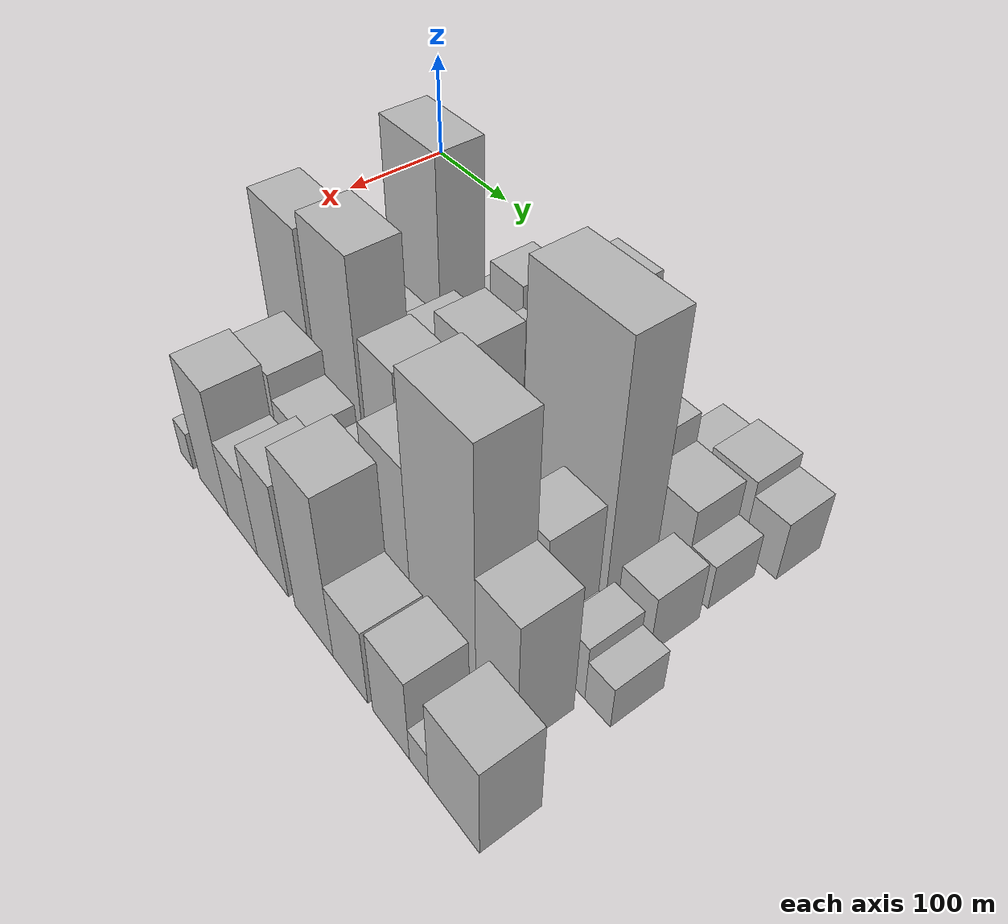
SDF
<sdf version="1.6">
 <world name="default">
  <model name="building_33">
   <static>1</static>
   <pose>100.0000 210.1511 0 0.000000 0.000000 0.000000</pose>
   <link name="link">
    <pose>0 0 7.50 0 0 0</pose>
    <collision name="collision"><geometry><box><size>40.0000 7.4541 15.0000</size></box></geometry></collision>
    <visual name="visual">
     <cast_shadows>0</cast_shadows>
     <geometry><box><size>40.0000 7.4541 15.0000</size></box></geometry>
     <material>
      <script>
       <uri>model://HANNAS_wall/materials/scripts</uri>
       <uri>model://HANNAS_wall/materials/textures</uri>
       <name>vrc/HANNAS_wall</name>
      </script>
     </material>
    </visual>
   </link>
  </model>
  <model name="building_34">
   <static>1</static>
   <pose>100.0000 224.5080 0 0.000000 0.000000 0.000000</pose>
   <link name="link">
    <pose>0 0 18.00 0 0 0</pose>
    <collision name="collision"><geometry><box><size>40.0000 21.2596 36.0000</size></box></geometry></collision>
    <visual name="visual">
     <cast_shadows>0</cast_shadows>
     <geometry><box><size>40.0000 21.2596 36.0000</size></box></geometry>
     <material>
      <script>
       <uri>model://HANNAS_wall/materials/scripts</uri>
       <uri>model://HANNAS_wall/materials/textures</uri>
       <name>vrc/HANNAS_wall</name>
      </script>
     </material>
    </visual>
   </link>
  </model>
  <model name="building_35">
   <static>1</static>
   <pose>100.0000 254.3415 0 0.000000 0.000000 0.000000</pose>
   <link name="link">
    <pose>0 0 34.50 0 0 0</pose>
    <collision name="collision"><geometry><box><size>40.0000 38.4075 69.0000</size></box></geometry></collision>
    <visual name="visual">
     <cast_shadows>0</cast_shadows>
     <geometry><box><size>40.0000 38.4075 69.0000</size></box></geometry>
     <material>
      <script>
       <uri>model://HANNAS_wall/materials/scripts</uri>
       <uri>model://HANNAS_wall/materials/textures</uri>
       <name>vrc/HANNAS_wall</name>
      </script>
     </material>
    </visual>
   </link>
  </model>
  <model name="building_36">
   <static>1</static>
   <pose>100.0000 281.0811 0 0.000000 0.000000 0.000000</pose>
   <link name="link">
    <pose>0 0 10.50 0 0 0</pose>
    <collision name="collision"><geometry><box><size>40.0000 9.0717 21.0000</size></box></geometry></collision>
    <visual name="visual">
     <cast_shadows>0</cast_shadows>
     <geometry><box><size>40.0000 9.0717 21.0000</size></box></geometry>
     <material>
      <script>
       <uri>model://HANNAS_wall/materials/scripts</uri>
       <uri>model://HANNAS_wall/materials/textures</uri>
       <name>vrc/HANNAS_wall</name>
      </script>
     </material>
    </visual>
   </link>
  </model>
  <model name="building_37">
   <static>1</static>
   <pose>100.0000 301.2184 0 0.000000 0.000000 0.000000</pose>
   <link name="link">
    <pose>0 0 27.00 0 0 0</pose>
    <collision name="collision"><geometry><box><size>40.0000 31.2029 54.0000</size></box></geometry></collision>
    <visual name="visual">
     <cast_shadows>0</cast_shadows>
     <geometry><box><size>40.0000 31.2029 54.0000</size></box></geometry>
     <material>
      <script>
       <uri>model://HANNAS_wall/materials/scripts</uri>
       <uri>model://HANNAS_wall/materials/textures</uri>
       <name>vrc/HANNAS_wall</name>
      </script>
     </material>
    </visual>
   </link>
  </model>
  <model name="building_38">
   <static>1</static>
   <pose>100.0000 344.7618 0 0.000000 0.000000 0.000000</pose>
   <link name="link">
    <pose>0 0 61.50 0 0 0</pose>
    <collision name="collision"><geometry><box><size>40.0000 43.8839 123.0000</size></box></geometry></collision>
    <visual name="visual">
     <cast_shadows>0</cast_shadows>
     <geometry><box><size>40.0000 43.8839 123.0000</size></box></geometry>
     <material>
      <script>
       <uri>model://HANNAS_wall/materials/scripts</uri>
       <uri>model://HANNAS_wall/materials/textures</uri>
       <name>vrc/HANNAS_wall</name>
      </script>
     </material>
    </visual>
   </link>
  </model>
  <model name="building_39">
   <static>1</static>
   <pose>100.0000 377.5432 0 0.000000 0.000000 0.000000</pose>
   <link name="link">
    <pose>0 0 19.50 0 0 0</pose>
    <collision name="collision"><geometry><box><size>40.0000 21.6790 39.0000</size></box></geometry></collision>
    <visual name="visual">
     <cast_shadows>0</cast_shadows>
     <geometry><box><size>40.0000 21.6790 39.0000</size></box></geometry>
     <material>
      <script>
       <uri>model://HANNAS_wall/materials/scripts</uri>
       <uri>model://HANNAS_wall/materials/textures</uri>
       <name>vrc/HANNAS_wall</name>
      </script>
     </material>
    </visual>
   </link>
  </model>
  <model name="building_40">
   <static>1</static>
   <pose>100.0000 398.1407 0 0.000000 0.000000 0.000000</pose>
   <link name="link">
    <pose>0 0 16.50 0 0 0</pose>
    <collision name="collision"><geometry><box><size>40.0000 19.5160 33.0000</size></box></geometry></collision>
    <visual name="visual">
     <cast_shadows>0</cast_shadows>
     <geometry><box><size>40.0000 19.5160 33.0000</size></box></geometry>
     <material>
      <script>
       <uri>model://HANNAS_wall/materials/scripts</uri>
       <uri>model://HANNAS_wall/materials/textures</uri>
       <name>vrc/HANNAS_wall</name>
      </script>
     </material>
    </visual>
   </link>
  </model>
  <model name="building_41">
   <static>1</static>
   <pose>100.0000 411.3787 0 0.000000 0.000000 0.000000</pose>
   <link name="link">
    <pose>0 0 7.50 0 0 0</pose>
    <collision name="collision"><geometry><box><size>40.0000 6.9599 15.0000</size></box></geometry></collision>
    <visual name="visual">
     <cast_shadows>0</cast_shadows>
     <geometry><box><size>40.0000 6.9599 15.0000</size></box></geometry>
     <material>
      <script>
       <uri>model://HANNAS_wall/materials/scripts</uri>
       <uri>model://HANNAS_wall/materials/textures</uri>
       <name>vrc/HANNAS_wall</name>
      </script>
     </material>
    </visual>
   </link>
  </model>
  <model name="building_42">
   <static>1</static>
   <pose>100.0000 419.9391 0 0.000000 0.000000 0.000000</pose>
   <link name="link">
    <pose>0 0 12.00 0 0 0</pose>
    <collision name="collision"><geometry><box><size>40.0000 10.1609 24.0000</size></box></geometry></collision>
    <visual name="visual">
     <cast_shadows>0</cast_shadows>
     <geometry><box><size>40.0000 10.1609 24.0000</size></box></geometry>
     <material>
      <script>
       <uri>model://HANNAS_wall/materials/scripts</uri>
       <uri>model://HANNAS_wall/materials/textures</uri>
       <name>vrc/HANNAS_wall</name>
      </script>
     </material>
    </visual>
   </link>
  </model>
  <model name="building_43">
   <static>1</static>
   <pose>100.0000 446.2726 0 0.000000 0.000000 0.000000</pose>
   <link name="link">
    <pose>0 0 27.00 0 0 0</pose>
    <collision name="collision"><geometry><box><size>40.0000 28.5061 54.0000</size></box></geometry></collision>
    <visual name="visual">
     <cast_shadows>0</cast_shadows>
     <geometry><box><size>40.0000 28.5061 54.0000</size></box></geometry>
     <material>
      <script>
       <uri>model://HANNAS_wall/materials/scripts</uri>
       <uri>model://HANNAS_wall/materials/textures</uri>
       <name>vrc/HANNAS_wall</name>
      </script>
     </material>
    </visual>
   </link>
  </model>
  <model name="building_44">
   <static>1</static>
   <pose>100.0000 478.7097 0 0.000000 0.000000 0.000000</pose>
   <link name="link">
    <pose>0 0 31.50 0 0 0</pose>
    <collision name="collision"><geometry><box><size>40.0000 36.3681 63.0000</size></box></geometry></collision>
    <visual name="visual">
     <cast_shadows>0</cast_shadows>
     <geometry><box><size>40.0000 36.3681 63.0000</size></box></geometry>
     <material>
      <script>
       <uri>model://HANNAS_wall/materials/scripts</uri>
       <uri>model://HANNAS_wall/materials/textures</uri>
       <name>vrc/HANNAS_wall</name>
      </script>
     </material>
    </visual>
   </link>
  </model>
  <model name="building_45">
   <static>1</static>
   <pose>100.0000 510.9054 0 0.000000 0.000000 0.000000</pose>
   <link name="link">
    <pose>0 0 25.50 0 0 0</pose>
    <collision name="collision"><geometry><box><size>40.0000 28.0233 51.0000</size></box></geometry></collision>
    <visual name="visual">
     <cast_shadows>0</cast_shadows>
     <geometry><box><size>40.0000 28.0233 51.0000</size></box></geometry>
     <material>
      <script>
       <uri>model://HANNAS_wall/materials/scripts</uri>
       <uri>model://HANNAS_wall/materials/textures</uri>
       <name>vrc/HANNAS_wall</name>
      </script>
     </material>
    </visual>
   </link>
  </model>
  <model name="building_89">
   <static>1</static>
   <pose>149.0000 206.8154 0 0.000000 0.000000 0.000000</pose>
   <link name="link">
    <pose>0 0 90.00 0 0 0</pose>
    <collision name="collision"><geometry><box><size>40.0000 65.9945 180.0000</size></box></geometry></collision>
    <visual name="visual">
     <cast_shadows>0</cast_shadows>
     <geometry><box><size>40.0000 65.9945 180.0000</size></box></geometry>
     <material>
      <script>
       <uri>model://HANNAS_wall/materials/scripts</uri>
       <uri>model://HANNAS_wall/materials/textures</uri>
       <name>vrc/HANNAS_wall</name>
      </script>
     </material>
    </visual>
   </link>
  </model>
  <model name="building_90">
   <static>1</static>
   <pose>149.0000 250.9738 0 0.000000 0.000000 0.000000</pose>
   <link name="link">
    <pose>0 0 19.50 0 0 0</pose>
    <collision name="collision"><geometry><box><size>40.0000 22.3221 39.0000</size></box></geometry></collision>
    <visual name="visual">
     <cast_shadows>0</cast_shadows>
     <geometry><box><size>40.0000 22.3221 39.0000</size></box></geometry>
     <material>
      <script>
       <uri>model://HANNAS_wall/materials/scripts</uri>
       <uri>model://HANNAS_wall/materials/textures</uri>
       <name>vrc/HANNAS_wall</name>
      </script>
     </material>
    </visual>
   </link>
  </model>
  <model name="building_91">
   <static>1</static>
   <pose>149.0000 270.9331 0 0.000000 0.000000 0.000000</pose>
   <link name="link">
    <pose>0 0 16.50 0 0 0</pose>
    <collision name="collision"><geometry><box><size>40.0000 17.5966 33.0000</size></box></geometry></collision>
    <visual name="visual">
     <cast_shadows>0</cast_shadows>
     <geometry><box><size>40.0000 17.5966 33.0000</size></box></geometry>
     <material>
      <script>
       <uri>model://HANNAS_wall/materials/scripts</uri>
       <uri>model://HANNAS_wall/materials/textures</uri>
       <name>vrc/HANNAS_wall</name>
      </script>
     </material>
    </visual>
   </link>
  </model>
  <model name="building_92">
   <static>1</static>
   <pose>149.0000 282.7939 0 0.000000 0.000000 0.000000</pose>
   <link name="link">
    <pose>0 0 7.50 0 0 0</pose>
    <collision name="collision"><geometry><box><size>40.0000 6.1250 15.0000</size></box></geometry></collision>
    <visual name="visual">
     <cast_shadows>0</cast_shadows>
     <geometry><box><size>40.0000 6.1250 15.0000</size></box></geometry>
     <material>
      <script>
       <uri>model://HANNAS_wall/materials/scripts</uri>
       <uri>model://HANNAS_wall/materials/textures</uri>
       <name>vrc/HANNAS_wall</name>
      </script>
     </material>
    </visual>
   </link>
  </model>
  <model name="building_93">
   <static>1</static>
   <pose>149.0000 303.6468 0 0.000000 0.000000 0.000000</pose>
   <link name="link">
    <pose>0 0 31.50 0 0 0</pose>
    <collision name="collision"><geometry><box><size>40.0000 35.5808 63.0000</size></box></geometry></collision>
    <visual name="visual">
     <cast_shadows>0</cast_shadows>
     <geometry><box><size>40.0000 35.5808 63.0000</size></box></geometry>
     <material>
      <script>
       <uri>model://HANNAS_wall/materials/scripts</uri>
       <uri>model://HANNAS_wall/materials/textures</uri>
       <name>vrc/HANNAS_wall</name>
      </script>
     </material>
    </visual>
   </link>
  </model>
  <model name="building_94">
   <static>1</static>
   <pose>149.0000 327.3391 0 0.000000 0.000000 0.000000</pose>
   <link name="link">
    <pose>0 0 12.00 0 0 0</pose>
    <collision name="collision"><geometry><box><size>40.0000 11.8040 24.0000</size></box></geometry></collision>
    <visual name="visual">
     <cast_shadows>0</cast_shadows>
     <geometry><box><size>40.0000 11.8040 24.0000</size></box></geometry>
     <material>
      <script>
       <uri>model://HANNAS_wall/materials/scripts</uri>
       <uri>model://HANNAS_wall/materials/textures</uri>
       <name>vrc/HANNAS_wall</name>
      </script>
     </material>
    </visual>
   </link>
  </model>
  <model name="building_95">
   <static>1</static>
   <pose>149.0000 351.0810 0 0.000000 0.000000 0.000000</pose>
   <link name="link">
    <pose>0 0 31.50 0 0 0</pose>
    <collision name="collision"><geometry><box><size>40.0000 35.6799 63.0000</size></box></geometry></collision>
    <visual name="visual">
     <cast_shadows>0</cast_shadows>
     <geometry><box><size>40.0000 35.6799 63.0000</size></box></geometry>
     <material>
      <script>
       <uri>model://HANNAS_wall/materials/scripts</uri>
       <uri>model://HANNAS_wall/materials/textures</uri>
       <name>vrc/HANNAS_wall</name>
      </script>
     </material>
    </visual>
   </link>
  </model>
  <model name="building_96">
   <static>1</static>
   <pose>149.0000 387.4846 0 0.000000 0.000000 0.000000</pose>
   <link name="link">
    <pose>0 0 36.00 0 0 0</pose>
    <collision name="collision"><geometry><box><size>40.0000 37.1271 72.0000</size></box></geometry></collision>
    <visual name="visual">
     <cast_shadows>0</cast_shadows>
     <geometry><box><size>40.0000 37.1271 72.0000</size></box></geometry>
     <material>
      <script>
       <uri>model://HANNAS_wall/materials/scripts</uri>
       <uri>model://HANNAS_wall/materials/textures</uri>
       <name>vrc/HANNAS_wall</name>
      </script>
     </material>
    </visual>
   </link>
  </model>
  <model name="building_97">
   <static>1</static>
   <pose>149.0000 413.6735 0 0.000000 0.000000 0.000000</pose>
   <link name="link">
    <pose>0 0 15.00 0 0 0</pose>
    <collision name="collision"><geometry><box><size>40.0000 15.2506 30.0000</size></box></geometry></collision>
    <visual name="visual">
     <cast_shadows>0</cast_shadows>
     <geometry><box><size>40.0000 15.2506 30.0000</size></box></geometry>
     <material>
      <script>
       <uri>model://HANNAS_wall/materials/scripts</uri>
       <uri>model://HANNAS_wall/materials/textures</uri>
       <name>vrc/HANNAS_wall</name>
      </script>
     </material>
    </visual>
   </link>
  </model>
  <model name="building_98">
   <static>1</static>
   <pose>149.0000 437.7267 0 0.000000 0.000000 0.000000</pose>
   <link name="link">
    <pose>0 0 46.50 0 0 0</pose>
    <collision name="collision"><geometry><box><size>40.0000 32.8558 93.0000</size></box></geometry></collision>
    <visual name="visual">
     <cast_shadows>0</cast_shadows>
     <geometry><box><size>40.0000 32.8558 93.0000</size></box></geometry>
     <material>
      <script>
       <uri>model://HANNAS_wall/materials/scripts</uri>
       <uri>model://HANNAS_wall/materials/textures</uri>
       <name>vrc/HANNAS_wall</name>
      </script>
     </material>
    </visual>
   </link>
  </model>
  <model name="building_99">
   <static>1</static>
   <pose>149.0000 474.5249 0 0.000000 0.000000 0.000000</pose>
   <link name="link">
    <pose>0 0 34.50 0 0 0</pose>
    <collision name="collision"><geometry><box><size>40.0000 40.7406 69.0000</size></box></geometry></collision>
    <visual name="visual">
     <cast_shadows>0</cast_shadows>
     <geometry><box><size>40.0000 40.7406 69.0000</size></box></geometry>
     <material>
      <script>
       <uri>model://HANNAS_wall/materials/scripts</uri>
       <uri>model://HANNAS_wall/materials/textures</uri>
       <name>vrc/HANNAS_wall</name>
      </script>
     </material>
    </visual>
   </link>
  </model>
  <model name="building_100">
   <static>1</static>
   <pose>149.0000 504.8816 0 0.000000 0.000000 0.000000</pose>
   <link name="link">
    <pose>0 0 19.50 0 0 0</pose>
    <collision name="collision"><geometry><box><size>40.0000 19.9729 39.0000</size></box></geometry></collision>
    <visual name="visual">
     <cast_shadows>0</cast_shadows>
     <geometry><box><size>40.0000 19.9729 39.0000</size></box></geometry>
     <material>
      <script>
       <uri>model://HANNAS_wall/materials/scripts</uri>
       <uri>model://HANNAS_wall/materials/textures</uri>
       <name>vrc/HANNAS_wall</name>
      </script>
     </material>
    </visual>
   </link>
  </model>
  <model name="building_144">
   <static>1</static>
   <pose>198.0000 226.5395 0 0.000000 0.000000 0.000000</pose>
   <link name="link">
    <pose>0 0 28.50 0 0 0</pose>
    <collision name="collision"><geometry><box><size>40.0000 32.5829 57.0000</size></box></geometry></collision>
    <visual name="visual">
     <cast_shadows>0</cast_shadows>
     <geometry><box><size>40.0000 32.5829 57.0000</size></box></geometry>
     <material>
      <script>
       <uri>model://HANNAS_wall/materials/scripts</uri>
       <uri>model://HANNAS_wall/materials/textures</uri>
       <name>vrc/HANNAS_wall</name>
      </script>
     </material>
    </visual>
   </link>
  </model>
  <model name="building_145">
   <static>1</static>
   <pose>198.0000 254.0576 0 0.000000 0.000000 0.000000</pose>
   <link name="link">
    <pose>0 0 21.00 0 0 0</pose>
    <collision name="collision"><geometry><box><size>40.0000 22.4533 42.0000</size></box></geometry></collision>
    <visual name="visual">
     <cast_shadows>0</cast_shadows>
     <geometry><box><size>40.0000 22.4533 42.0000</size></box></geometry>
     <material>
      <script>
       <uri>model://HANNAS_wall/materials/scripts</uri>
       <uri>model://HANNAS_wall/materials/textures</uri>
       <name>vrc/HANNAS_wall</name>
      </script>
     </material>
    </visual>
   </link>
  </model>
  <model name="building_146">
   <static>1</static>
   <pose>198.0000 288.4179 0 0.000000 0.000000 0.000000</pose>
   <link name="link">
    <pose>0 0 46.50 0 0 0</pose>
    <collision name="collision"><geometry><box><size>40.0000 34.2671 93.0000</size></box></geometry></collision>
    <visual name="visual">
     <cast_shadows>0</cast_shadows>
     <geometry><box><size>40.0000 34.2671 93.0000</size></box></geometry>
     <material>
      <script>
       <uri>model://HANNAS_wall/materials/scripts</uri>
       <uri>model://HANNAS_wall/materials/textures</uri>
       <name>vrc/HANNAS_wall</name>
      </script>
     </material>
    </visual>
   </link>
  </model>
  <model name="building_147">
   <static>1</static>
   <pose>198.0000 326.5581 0 0.000000 0.000000 0.000000</pose>
   <link name="link">
    <pose>0 0 58.50 0 0 0</pose>
    <collision name="collision"><geometry><box><size>40.0000 42.0132 117.0000</size></box></geometry></collision>
    <visual name="visual">
     <cast_shadows>0</cast_shadows>
     <geometry><box><size>40.0000 42.0132 117.0000</size></box></geometry>
     <material>
      <script>
       <uri>model://HANNAS_wall/materials/scripts</uri>
       <uri>model://HANNAS_wall/materials/textures</uri>
       <name>vrc/HANNAS_wall</name>
      </script>
     </material>
    </visual>
   </link>
  </model>
  <model name="building_148">
   <static>1</static>
   <pose>198.0000 351.4701 0 0.000000 0.000000 0.000000</pose>
   <link name="link">
    <pose>0 0 9.00 0 0 0</pose>
    <collision name="collision"><geometry><box><size>40.0000 7.8107 18.0000</size></box></geometry></collision>
    <visual name="visual">
     <cast_shadows>0</cast_shadows>
     <geometry><box><size>40.0000 7.8107 18.0000</size></box></geometry>
     <material>
      <script>
       <uri>model://HANNAS_wall/materials/scripts</uri>
       <uri>model://HANNAS_wall/materials/textures</uri>
       <name>vrc/HANNAS_wall</name>
      </script>
     </material>
    </visual>
   </link>
  </model>
  <model name="building_149">
   <static>1</static>
   <pose>198.0000 371.3286 0 0.000000 0.000000 0.000000</pose>
   <link name="link">
    <pose>0 0 31.50 0 0 0</pose>
    <collision name="collision"><geometry><box><size>40.0000 31.9063 63.0000</size></box></geometry></collision>
    <visual name="visual">
     <cast_shadows>0</cast_shadows>
     <geometry><box><size>40.0000 31.9063 63.0000</size></box></geometry>
     <material>
      <script>
       <uri>model://HANNAS_wall/materials/scripts</uri>
       <uri>model://HANNAS_wall/materials/textures</uri>
       <name>vrc/HANNAS_wall</name>
      </script>
     </material>
    </visual>
   </link>
  </model>
  <model name="building_150">
   <static>1</static>
   <pose>198.0000 436.7888 0 0.000000 0.000000 0.000000</pose>
   <link name="link">
    <pose>0 0 108.00 0 0 0</pose>
    <collision name="collision"><geometry><box><size>40.0000 81.0141 216.0000</size></box></geometry></collision>
    <visual name="visual">
     <cast_shadows>0</cast_shadows>
     <geometry><box><size>40.0000 81.0141 216.0000</size></box></geometry>
     <material>
      <script>
       <uri>model://HANNAS_wall/materials/scripts</uri>
       <uri>model://HANNAS_wall/materials/textures</uri>
       <name>vrc/HANNAS_wall</name>
      </script>
     </material>
    </visual>
   </link>
  </model>
  <model name="building_151">
   <static>1</static>
   <pose>198.0000 501.8376 0 0.000000 0.000000 0.000000</pose>
   <link name="link">
    <pose>0 0 25.50 0 0 0</pose>
    <collision name="collision"><geometry><box><size>40.0000 29.0835 51.0000</size></box></geometry></collision>
    <visual name="visual">
     <cast_shadows>0</cast_shadows>
     <geometry><box><size>40.0000 29.0835 51.0000</size></box></geometry>
     <material>
      <script>
       <uri>model://HANNAS_wall/materials/scripts</uri>
       <uri>model://HANNAS_wall/materials/textures</uri>
       <name>vrc/HANNAS_wall</name>
      </script>
     </material>
    </visual>
   </link>
  </model>
  <model name="building_185">
   <static>1</static>
   <pose>247.0000 192.2763 0 0.000000 0.000000 0.000000</pose>
   <link name="link">
    <pose>0 0 76.50 0 0 0</pose>
    <collision name="collision"><geometry><box><size>40.0000 60.3272 153.0000</size></box></geometry></collision>
    <visual name="visual">
     <cast_shadows>0</cast_shadows>
     <geometry><box><size>40.0000 60.3272 153.0000</size></box></geometry>
     <material>
      <script>
       <uri>model://HANNAS_wall/materials/scripts</uri>
       <uri>model://HANNAS_wall/materials/textures</uri>
       <name>vrc/HANNAS_wall</name>
      </script>
     </material>
    </visual>
   </link>
  </model>
  <model name="building_186">
   <static>1</static>
   <pose>247.0000 258.4437 0 0.000000 0.000000 0.000000</pose>
   <link name="link">
    <pose>0 0 85.50 0 0 0</pose>
    <collision name="collision"><geometry><box><size>40.0000 58.0077 171.0000</size></box></geometry></collision>
    <visual name="visual">
     <cast_shadows>0</cast_shadows>
     <geometry><box><size>40.0000 58.0077 171.0000</size></box></geometry>
     <material>
      <script>
       <uri>model://HANNAS_wall/materials/scripts</uri>
       <uri>model://HANNAS_wall/materials/textures</uri>
       <name>vrc/HANNAS_wall</name>
      </script>
     </material>
    </visual>
   </link>
  </model>
  <model name="building_187">
   <static>1</static>
   <pose>247.0000 312.0075 0 0.000000 0.000000 0.000000</pose>
   <link name="link">
    <pose>0 0 55.50 0 0 0</pose>
    <collision name="collision"><geometry><box><size>40.0000 39.1199 111.0000</size></box></geometry></collision>
    <visual name="visual">
     <cast_shadows>0</cast_shadows>
     <geometry><box><size>40.0000 39.1199 111.0000</size></box></geometry>
     <material>
      <script>
       <uri>model://HANNAS_wall/materials/scripts</uri>
       <uri>model://HANNAS_wall/materials/textures</uri>
       <name>vrc/HANNAS_wall</name>
      </script>
     </material>
    </visual>
   </link>
  </model>
  <model name="building_188">
   <static>1</static>
   <pose>247.0000 353.9020 0 0.000000 0.000000 0.000000</pose>
   <link name="link">
    <pose>0 0 24.00 0 0 0</pose>
    <collision name="collision"><geometry><box><size>40.0000 28.6692 48.0000</size></box></geometry></collision>
    <visual name="visual">
     <cast_shadows>0</cast_shadows>
     <geometry><box><size>40.0000 28.6692 48.0000</size></box></geometry>
     <material>
      <script>
       <uri>model://HANNAS_wall/materials/scripts</uri>
       <uri>model://HANNAS_wall/materials/textures</uri>
       <name>vrc/HANNAS_wall</name>
      </script>
     </material>
    </visual>
   </link>
  </model>
  <model name="building_189">
   <static>1</static>
   <pose>247.0000 385.0240 0 0.000000 0.000000 0.000000</pose>
   <link name="link">
    <pose>0 0 28.50 0 0 0</pose>
    <collision name="collision"><geometry><box><size>40.0000 33.5748 57.0000</size></box></geometry></collision>
    <visual name="visual">
     <cast_shadows>0</cast_shadows>
     <geometry><box><size>40.0000 33.5748 57.0000</size></box></geometry>
     <material>
      <script>
       <uri>model://HANNAS_wall/materials/scripts</uri>
       <uri>model://HANNAS_wall/materials/textures</uri>
       <name>vrc/HANNAS_wall</name>
      </script>
     </material>
    </visual>
   </link>
  </model>
  <model name="building_190">
   <static>1</static>
   <pose>247.0000 422.6155 0 0.000000 0.000000 0.000000</pose>
   <link name="link">
    <pose>0 0 37.50 0 0 0</pose>
    <collision name="collision"><geometry><box><size>40.0000 41.6082 75.0000</size></box></geometry></collision>
    <visual name="visual">
     <cast_shadows>0</cast_shadows>
     <geometry><box><size>40.0000 41.6082 75.0000</size></box></geometry>
     <material>
      <script>
       <uri>model://HANNAS_wall/materials/scripts</uri>
       <uri>model://HANNAS_wall/materials/textures</uri>
       <name>vrc/HANNAS_wall</name>
      </script>
     </material>
    </visual>
   </link>
  </model>
  <model name="building_191">
   <static>1</static>
   <pose>247.0000 461.4793 0 0.000000 0.000000 0.000000</pose>
   <link name="link">
    <pose>0 0 51.00 0 0 0</pose>
    <collision name="collision"><geometry><box><size>40.0000 36.1194 102.0000</size></box></geometry></collision>
    <visual name="visual">
     <cast_shadows>0</cast_shadows>
     <geometry><box><size>40.0000 36.1194 102.0000</size></box></geometry>
     <material>
      <script>
       <uri>model://HANNAS_wall/materials/scripts</uri>
       <uri>model://HANNAS_wall/materials/textures</uri>
       <name>vrc/HANNAS_wall</name>
      </script>
     </material>
    </visual>
   </link>
  </model>
  <model name="building_192">
   <static>1</static>
   <pose>247.0000 485.3309 0 0.000000 0.000000 0.000000</pose>
   <link name="link">
    <pose>0 0 13.50 0 0 0</pose>
    <collision name="collision"><geometry><box><size>40.0000 11.5838 27.0000</size></box></geometry></collision>
    <visual name="visual">
     <cast_shadows>0</cast_shadows>
     <geometry><box><size>40.0000 11.5838 27.0000</size></box></geometry>
     <material>
      <script>
       <uri>model://HANNAS_wall/materials/scripts</uri>
       <uri>model://HANNAS_wall/materials/textures</uri>
       <name>vrc/HANNAS_wall</name>
      </script>
     </material>
    </visual>
   </link>
  </model>
  <model name="building_193">
   <static>1</static>
   <pose>247.0000 503.4607 0 0.000000 0.000000 0.000000</pose>
   <link name="link">
    <pose>0 0 24.00 0 0 0</pose>
    <collision name="collision"><geometry><box><size>40.0000 24.6760 48.0000</size></box></geometry></collision>
    <visual name="visual">
     <cast_shadows>0</cast_shadows>
     <geometry><box><size>40.0000 24.6760 48.0000</size></box></geometry>
     <material>
      <script>
       <uri>model://HANNAS_wall/materials/scripts</uri>
       <uri>model://HANNAS_wall/materials/textures</uri>
       <name>vrc/HANNAS_wall</name>
      </script>
     </material>
    </visual>
   </link>
  </model>
  <model name="building_194">
   <static>1</static>
   <pose>247.0000 526.4495 0 0.000000 0.000000 0.000000</pose>
   <link name="link">
    <pose>0 0 18.00 0 0 0</pose>
    <collision name="collision"><geometry><box><size>40.0000 21.3015 36.0000</size></box></geometry></collision>
    <visual name="visual">
     <cast_shadows>0</cast_shadows>
     <geometry><box><size>40.0000 21.3015 36.0000</size></box></geometry>
     <material>
      <script>
       <uri>model://HANNAS_wall/materials/scripts</uri>
       <uri>model://HANNAS_wall/materials/textures</uri>
       <name>vrc/HANNAS_wall</name>
      </script>
     </material>
    </visual>
   </link>
  </model>
  <model name="building_235">
   <static>1</static>
   <pose>296.0000 192.9255 0 0.000000 0.000000 0.000000</pose>
   <link name="link">
    <pose>0 0 19.50 0 0 0</pose>
    <collision name="collision"><geometry><box><size>40.0000 20.5443 39.0000</size></box></geometry></collision>
    <visual name="visual">
     <cast_shadows>0</cast_shadows>
     <geometry><box><size>40.0000 20.5443 39.0000</size></box></geometry>
     <material>
      <script>
       <uri>model://HANNAS_wall/materials/scripts</uri>
       <uri>model://HANNAS_wall/materials/textures</uri>
       <name>vrc/HANNAS_wall</name>
      </script>
     </material>
    </visual>
   </link>
  </model>
  <model name="building_236">
   <static>1</static>
   <pose>296.0000 236.1553 0 0.000000 0.000000 0.000000</pose>
   <link name="link">
    <pose>0 0 42.00 0 0 0</pose>
    <collision name="collision"><geometry><box><size>40.0000 49.9152 84.0000</size></box></geometry></collision>
    <visual name="visual">
     <cast_shadows>0</cast_shadows>
     <geometry><box><size>40.0000 49.9152 84.0000</size></box></geometry>
     <material>
      <script>
       <uri>model://HANNAS_wall/materials/scripts</uri>
       <uri>model://HANNAS_wall/materials/textures</uri>
       <name>vrc/HANNAS_wall</name>
      </script>
     </material>
    </visual>
   </link>
  </model>
  <model name="building_237">
   <static>1</static>
   <pose>296.0000 279.1903 0 0.000000 0.000000 0.000000</pose>
   <link name="link">
    <pose>0 0 31.50 0 0 0</pose>
    <collision name="collision"><geometry><box><size>40.0000 36.1548 63.0000</size></box></geometry></collision>
    <visual name="visual">
     <cast_shadows>0</cast_shadows>
     <geometry><box><size>40.0000 36.1548 63.0000</size></box></geometry>
     <material>
      <script>
       <uri>model://HANNAS_wall/materials/scripts</uri>
       <uri>model://HANNAS_wall/materials/textures</uri>
       <name>vrc/HANNAS_wall</name>
      </script>
     </material>
    </visual>
   </link>
  </model>
  <model name="building_238">
   <static>1</static>
   <pose>296.0000 310.6424 0 0.000000 0.000000 0.000000</pose>
   <link name="link">
    <pose>0 0 24.00 0 0 0</pose>
    <collision name="collision"><geometry><box><size>40.0000 26.7494 48.0000</size></box></geometry></collision>
    <visual name="visual">
     <cast_shadows>0</cast_shadows>
     <geometry><box><size>40.0000 26.7494 48.0000</size></box></geometry>
     <material>
      <script>
       <uri>model://HANNAS_wall/materials/scripts</uri>
       <uri>model://HANNAS_wall/materials/textures</uri>
       <name>vrc/HANNAS_wall</name>
      </script>
     </material>
    </visual>
   </link>
  </model>
  <model name="building_239">
   <static>1</static>
   <pose>296.0000 345.6736 0 0.000000 0.000000 0.000000</pose>
   <link name="link">
    <pose>0 0 39.00 0 0 0</pose>
    <collision name="collision"><geometry><box><size>40.0000 43.3129 78.0000</size></box></geometry></collision>
    <visual name="visual">
     <cast_shadows>0</cast_shadows>
     <geometry><box><size>40.0000 43.3129 78.0000</size></box></geometry>
     <material>
      <script>
       <uri>model://HANNAS_wall/materials/scripts</uri>
       <uri>model://HANNAS_wall/materials/textures</uri>
       <name>vrc/HANNAS_wall</name>
      </script>
     </material>
    </visual>
   </link>
  </model>
  <model name="building_240">
   <static>1</static>
   <pose>296.0000 395.7084 0 0.000000 0.000000 0.000000</pose>
   <link name="link">
    <pose>0 0 67.50 0 0 0</pose>
    <collision name="collision"><geometry><box><size>40.0000 42.7569 135.0000</size></box></geometry></collision>
    <visual name="visual">
     <cast_shadows>0</cast_shadows>
     <geometry><box><size>40.0000 42.7569 135.0000</size></box></geometry>
     <material>
      <script>
       <uri>model://HANNAS_wall/materials/scripts</uri>
       <uri>model://HANNAS_wall/materials/textures</uri>
       <name>vrc/HANNAS_wall</name>
      </script>
     </material>
    </visual>
   </link>
  </model>
  <model name="building_241">
   <static>1</static>
   <pose>296.0000 448.5559 0 0.000000 0.000000 0.000000</pose>
   <link name="link">
    <pose>0 0 103.50 0 0 0</pose>
    <collision name="collision"><geometry><box><size>40.0000 62.9380 207.0000</size></box></geometry></collision>
    <visual name="visual">
     <cast_shadows>0</cast_shadows>
     <geometry><box><size>40.0000 62.9380 207.0000</size></box></geometry>
     <material>
      <script>
       <uri>model://HANNAS_wall/materials/scripts</uri>
       <uri>model://HANNAS_wall/materials/textures</uri>
       <name>vrc/HANNAS_wall</name>
      </script>
     </material>
    </visual>
   </link>
  </model>
  <model name="building_242">
   <static>1</static>
   <pose>296.0000 498.4198 0 0.000000 0.000000 0.000000</pose>
   <link name="link">
    <pose>0 0 55.50 0 0 0</pose>
    <collision name="collision"><geometry><box><size>40.0000 36.7898 111.0000</size></box></geometry></collision>
    <visual name="visual">
     <cast_shadows>0</cast_shadows>
     <geometry><box><size>40.0000 36.7898 111.0000</size></box></geometry>
     <material>
      <script>
       <uri>model://HANNAS_wall/materials/scripts</uri>
       <uri>model://HANNAS_wall/materials/textures</uri>
       <name>vrc/HANNAS_wall</name>
      </script>
     </material>
    </visual>
   </link>
  </model>
  <model name="building_283">
   <static>1</static>
   <pose>345.0000 217.1805 0 0.000000 0.000000 0.000000</pose>
   <link name="link">
    <pose>0 0 16.50 0 0 0</pose>
    <collision name="collision"><geometry><box><size>40.0000 18.8455 33.0000</size></box></geometry></collision>
    <visual name="visual">
     <cast_shadows>0</cast_shadows>
     <geometry><box><size>40.0000 18.8455 33.0000</size></box></geometry>
     <material>
      <script>
       <uri>model://HANNAS_wall/materials/scripts</uri>
       <uri>model://HANNAS_wall/materials/textures</uri>
       <name>vrc/HANNAS_wall</name>
      </script>
     </material>
    </visual>
   </link>
  </model>
  <model name="building_284">
   <static>1</static>
   <pose>345.0000 257.2394 0 0.000000 0.000000 0.000000</pose>
   <link name="link">
    <pose>0 0 55.50 0 0 0</pose>
    <collision name="collision"><geometry><box><size>40.0000 41.2723 111.0000</size></box></geometry></collision>
    <visual name="visual">
     <cast_shadows>0</cast_shadows>
     <geometry><box><size>40.0000 41.2723 111.0000</size></box></geometry>
     <material>
      <script>
       <uri>model://HANNAS_wall/materials/scripts</uri>
       <uri>model://HANNAS_wall/materials/textures</uri>
       <name>vrc/HANNAS_wall</name>
      </script>
     </material>
    </visual>
   </link>
  </model>
  <model name="building_285">
   <static>1</static>
   <pose>345.0000 297.4078 0 0.000000 0.000000 0.000000</pose>
   <link name="link">
    <pose>0 0 34.50 0 0 0</pose>
    <collision name="collision"><geometry><box><size>40.0000 39.0646 69.0000</size></box></geometry></collision>
    <visual name="visual">
     <cast_shadows>0</cast_shadows>
     <geometry><box><size>40.0000 39.0646 69.0000</size></box></geometry>
     <material>
      <script>
       <uri>model://HANNAS_wall/materials/scripts</uri>
       <uri>model://HANNAS_wall/materials/textures</uri>
       <name>vrc/HANNAS_wall</name>
      </script>
     </material>
    </visual>
   </link>
  </model>
  <model name="building_286">
   <static>1</static>
   <pose>345.0000 336.5134 0 0.000000 0.000000 0.000000</pose>
   <link name="link">
    <pose>0 0 49.50 0 0 0</pose>
    <collision name="collision"><geometry><box><size>40.0000 39.1464 99.0000</size></box></geometry></collision>
    <visual name="visual">
     <cast_shadows>0</cast_shadows>
     <geometry><box><size>40.0000 39.1464 99.0000</size></box></geometry>
     <material>
      <script>
       <uri>model://HANNAS_wall/materials/scripts</uri>
       <uri>model://HANNAS_wall/materials/textures</uri>
       <name>vrc/HANNAS_wall</name>
      </script>
     </material>
    </visual>
   </link>
  </model>
  <model name="building_287">
   <static>1</static>
   <pose>345.0000 386.1127 0 0.000000 0.000000 0.000000</pose>
   <link name="link">
    <pose>0 0 69.00 0 0 0</pose>
    <collision name="collision"><geometry><box><size>40.0000 44.0524 138.0000</size></box></geometry></collision>
    <visual name="visual">
     <cast_shadows>0</cast_shadows>
     <geometry><box><size>40.0000 44.0524 138.0000</size></box></geometry>
     <material>
      <script>
       <uri>model://HANNAS_wall/materials/scripts</uri>
       <uri>model://HANNAS_wall/materials/textures</uri>
       <name>vrc/HANNAS_wall</name>
      </script>
     </material>
    </visual>
   </link>
  </model>
  <model name="building_288">
   <static>1</static>
   <pose>345.0000 426.6532 0 0.000000 0.000000 0.000000</pose>
   <link name="link">
    <pose>0 0 33.00 0 0 0</pose>
    <collision name="collision"><geometry><box><size>40.0000 37.0285 66.0000</size></box></geometry></collision>
    <visual name="visual">
     <cast_shadows>0</cast_shadows>
     <geometry><box><size>40.0000 37.0285 66.0000</size></box></geometry>
     <material>
      <script>
       <uri>model://HANNAS_wall/materials/scripts</uri>
       <uri>model://HANNAS_wall/materials/textures</uri>
       <name>vrc/HANNAS_wall</name>
      </script>
     </material>
    </visual>
   </link>
  </model>
  <model name="building_289">
   <static>1</static>
   <pose>345.0000 468.3395 0 0.000000 0.000000 0.000000</pose>
   <link name="link">
    <pose>0 0 36.00 0 0 0</pose>
    <collision name="collision"><geometry><box><size>40.0000 36.3443 72.0000</size></box></geometry></collision>
    <visual name="visual">
     <cast_shadows>0</cast_shadows>
     <geometry><box><size>40.0000 36.3443 72.0000</size></box></geometry>
     <material>
      <script>
       <uri>model://HANNAS_wall/materials/scripts</uri>
       <uri>model://HANNAS_wall/materials/textures</uri>
       <name>vrc/HANNAS_wall</name>
      </script>
     </material>
    </visual>
   </link>
  </model>
  <model name="building_290">
   <static>1</static>
   <pose>345.0000 495.3656 0 0.000000 0.000000 0.000000</pose>
   <link name="link">
    <pose>0 0 15.00 0 0 0</pose>
    <collision name="collision"><geometry><box><size>40.0000 17.7078 30.0000</size></box></geometry></collision>
    <visual name="visual">
     <cast_shadows>0</cast_shadows>
     <geometry><box><size>40.0000 17.7078 30.0000</size></box></geometry>
     <material>
      <script>
       <uri>model://HANNAS_wall/materials/scripts</uri>
       <uri>model://HANNAS_wall/materials/textures</uri>
       <name>vrc/HANNAS_wall</name>
      </script>
     </material>
    </visual>
   </link>
  </model>
  <model name="building_291">
   <static>1</static>
   <pose>345.0000 526.5440 0 0.000000 0.000000 0.000000</pose>
   <link name="link">
    <pose>0 0 39.00 0 0 0</pose>
    <collision name="collision"><geometry><box><size>40.0000 44.6491 78.0000</size></box></geometry></collision>
    <visual name="visual">
     <cast_shadows>0</cast_shadows>
     <geometry><box><size>40.0000 44.6491 78.0000</size></box></geometry>
     <material>
      <script>
       <uri>model://HANNAS_wall/materials/scripts</uri>
       <uri>model://HANNAS_wall/materials/textures</uri>
       <name>vrc/HANNAS_wall</name>
      </script>
     </material>
    </visual>
   </link>
  </model>
 </world>
</sdf>
